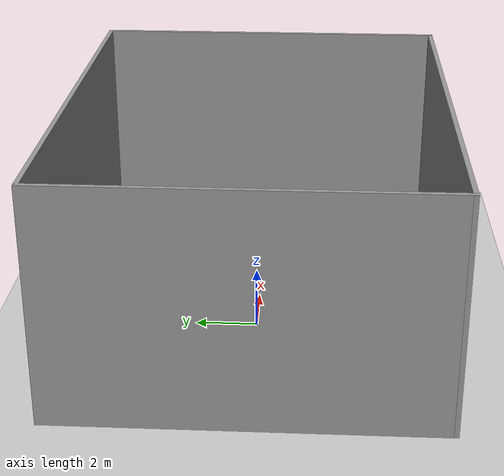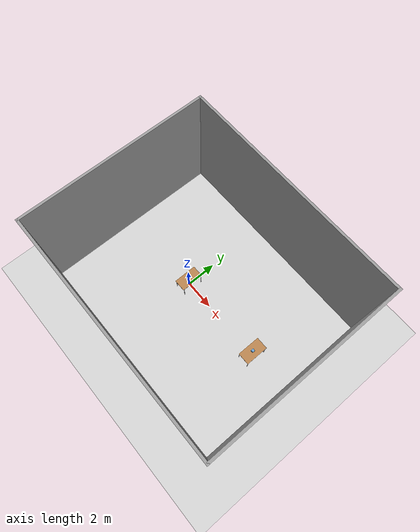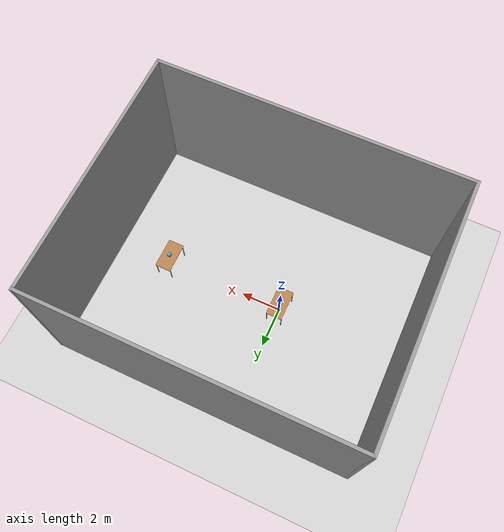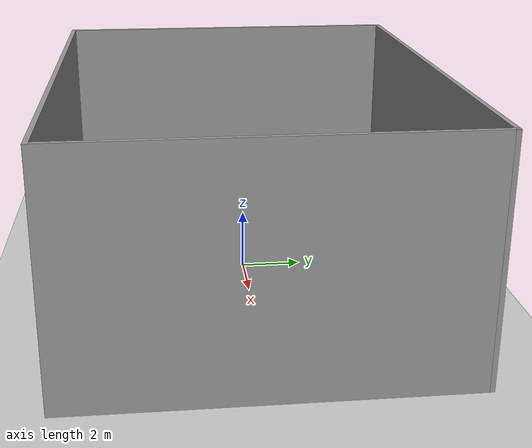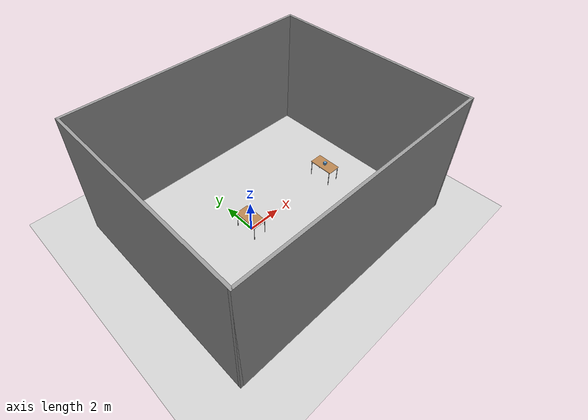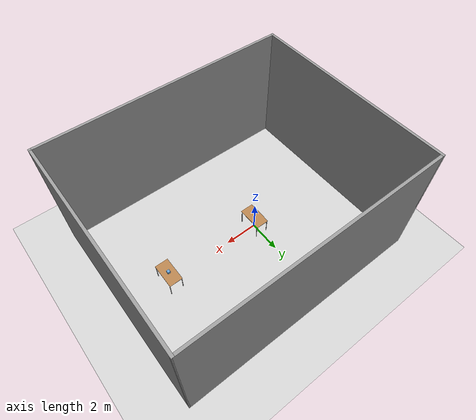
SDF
<sdf version="1.5">
 <world name="default">
  <light name="sun" type="directional">
   <pose>0 0 10 0 -0 0</pose>
   <diffuse>0.8 0.8 0.8 1</diffuse>
   <specular>0.2 0.2 0.2 1</specular>
   <attenuation>
    <range>1000</range>
    <constant>0.9</constant>
    <linear>0.01</linear>
    <quadratic>0.001</quadratic>
   </attenuation>
   <direction>-0.5 0.1 -0.9</direction>
   <spot><inner_angle>0</inner_angle><outer_angle>0</outer_angle><falloff>0</falloff></spot>
  </light>
  <model name="ground_plane">
   <static>1</static>
   <link name="link">
    <collision name="collision">
     <geometry><plane><normal>0 0 1</normal><size>100 100</size></plane></geometry>
     <surface>
      <contact><collide_bitmask>65535</collide_bitmask></contact>
      <friction><ode><mu>100</mu><mu2>50</mu2></ode></friction>
     </surface>
    </collision>
    <visual name="visual">
     <cast_shadows>0</cast_shadows>
     <geometry><plane><normal>0 0 1</normal><size>100 100</size></plane></geometry>
     <material>
      <script><uri>file://media/materials/scripts/gazebo.material</uri><name>Gazebo/Grey</name></script>
     </material>
    </visual>
   </link>
  </model>
  <gravity>0 0 -9.8</gravity>
  <magnetic_field>6e-06 2.3e-05 -4.2e-05</magnetic_field>
  <atmosphere type="adiabatic"/>
  <physics type="ode">
   <max_step_size>0.001</max_step_size>
   <real_time_factor>1</real_time_factor>
   <real_time_update_rate>1000</real_time_update_rate>
  </physics>
  <scene><ambient>0.4 0.4 0.4 1</ambient><background>0.7 0.7 0.7 1</background><shadows>1</shadows></scene>
  <spherical_coordinates>
   <surface_model>EARTH_WGS84</surface_model>
   <latitude_deg>0</latitude_deg>
   <longitude_deg>0</longitude_deg>
   <elevation>0</elevation>
   <heading_deg>0</heading_deg>
  </spherical_coordinates>
  <model name="Gym">
   <pose>1.425 0 0 0 -0 0</pose>
   <link name="Wall_16">
    <collision name="Wall_16_Collision">
     <geometry><box><size>12.15 0.15 7.5</size></box></geometry>
     <pose>0 0 3.75 0 -0 0</pose>
    </collision>
    <visual name="Wall_16_Visual">
     <pose>0 0 3.75 0 -0 0</pose>
     <geometry><box><size>12.15 0.15 7.5</size></box></geometry>
     <material>
      <script><uri>file://media/materials/scripts/gazebo.material</uri><name>Gazebo/Grey</name></script>
      <ambient>1 1 1 1</ambient>
     </material>
     <meta><layer>0</layer></meta>
    </visual>
    <pose>-7.425 0 0 0 -0 1.5708</pose>
   </link>
   <link name="Wall_18">
    <collision name="Wall_18_Collision">
     <geometry><box><size>15 0.15 7.5</size></box></geometry>
     <pose>0 0 3.75 0 -0 0</pose>
    </collision>
    <visual name="Wall_18_Visual">
     <pose>0 0 3.75 0 -0 0</pose>
     <geometry><box><size>15 0.15 7.5</size></box></geometry>
     <material>
      <script><uri>file://media/materials/scripts/gazebo.material</uri><name>Gazebo/Grey</name></script>
      <ambient>1 1 1 1</ambient>
     </material>
     <meta><layer>0</layer></meta>
    </visual>
    <pose>-0 -6 0 0 -0 0</pose>
   </link>
   <link name="Wall_20">
    <collision name="Wall_20_Collision">
     <geometry><box><size>12.15 0.15 7.5</size></box></geometry>
     <pose>0 0 3.75 0 -0 0</pose>
    </collision>
    <visual name="Wall_20_Visual">
     <pose>0 0 3.75 0 -0 0</pose>
     <geometry><box><size>12.15 0.15 7.5</size></box></geometry>
     <material>
      <script><uri>file://media/materials/scripts/gazebo.material</uri><name>Gazebo/Grey</name></script>
      <ambient>1 1 1 1</ambient>
     </material>
     <meta><layer>0</layer></meta>
    </visual>
    <pose>7.425 0 0 0 -0 1.5708</pose>
   </link>
   <link name="Wall_22">
    <collision name="Wall_22_Collision">
     <geometry><box><size>15 0.15 7.5</size></box></geometry>
     <pose>0 0 3.75 0 -0 0</pose>
    </collision>
    <visual name="Wall_22_Visual">
     <pose>0 0 3.75 0 -0 0</pose>
     <geometry><box><size>15 0.15 7.5</size></box></geometry>
     <material>
      <script><uri>file://media/materials/scripts/gazebo.material</uri><name>Gazebo/Grey</name></script>
      <ambient>1 1 1 1</ambient>
     </material>
     <meta><layer>0</layer></meta>
    </visual>
    <pose>-0 6 0 0 -0 0</pose>
   </link>
   <static>1</static>
  </model>
  <model name="payload">
   <link name="link">
    <inertial>
     <mass>0.6</mass>
     <inertia>
      <ixx>0.00261032</ixx>
      <ixy>0</ixy>
      <ixz>0</ixz>
      <iyy>0.00267918</iyy>
      <iyz>0</iyz>
      <izz>0.00262477</izz>
     </inertia>
    </inertial>
    <visual name="visual">
     <geometry><box><size>0.164123 0.164123 0.16324</size></box></geometry>
     <material>
      <script><name>Gazebo/Grey</name><uri>file://media/materials/scripts/gazebo.material</uri></script>
      <shader type="pixel"><normal_map>__default__</normal_map></shader>
      <ambient>0.4 0.624 0.824 0</ambient>
      <diffuse>0.4 0.624 0.824 0</diffuse>
      <specular>0.4 0.624 0.824 0</specular>
      <emissive>0 0 0 1</emissive>
     </material>
    </visual>
    <collision name="collision">
     <geometry><box><size>0.164123 0.159872 0.16324</size></box></geometry>
     <surface>
      <friction>
       <ode><mu>1</mu><mu2>1</mu2><fdir1>0 0 0</fdir1><slip1>0</slip1><slip2>0</slip2></ode>
       <torsional>
        <coefficient>1</coefficient>
        <patch_radius>0</patch_radius>
        <surface_radius>0</surface_radius>
        <use_patch_radius>1</use_patch_radius>
        <ode><slip>0</slip></ode>
       </torsional>
      </friction>
      <bounce><restitution_coefficient>0</restitution_coefficient><threshold>1e+06</threshold></bounce>
      <contact>
       <collide_without_contact>0</collide_without_contact>
       <collide_without_contact_bitmask>1</collide_without_contact_bitmask>
       <collide_bitmask>1</collide_bitmask>
       <ode>
        <soft_cfm>0</soft_cfm>
        <soft_erp>0.2</soft_erp>
        <kp>1e+13</kp>
        <kd>1</kd>
        <max_vel>0.01</max_vel>
        <min_depth>0</min_depth>
       </ode>
       <bullet>
        <split_impulse>1</split_impulse>
        <split_impulse_penetration_threshold>-0.01</split_impulse_penetration_threshold>
        <soft_cfm>0</soft_cfm>
        <soft_erp>0.2</soft_erp>
        <kp>1e+13</kp>
        <kd>1</kd>
       </bullet>
      </contact>
     </surface>
    </collision>
   </link>
   <static>0</static>
   <pose>6 0 1.09687 0 -0 0</pose>
  </model>
  <model name="table">
   <static>1</static>
   <link name="link">
    <collision name="surface">
     <pose>0 0 1 0 -0 0</pose>
     <geometry><box><size>1.5 0.8 0.03</size></box></geometry>
     <surface><friction><ode><mu>0.6</mu><mu2>0.6</mu2></ode></friction></surface>
    </collision>
    <visual name="visual1">
     <pose>0 0 1 0 -0 0</pose>
     <geometry><box><size>1.5 0.8 0.03</size></box></geometry>
     <material>
      <script><uri>file://media/materials/scripts/gazebo.material</uri><name>Gazebo/Wood</name></script>
     </material>
    </visual>
    <collision name="front_left_leg">
     <pose>0.68 0.38 0.5 0 -0 0</pose>
     <geometry><cylinder><radius>0.02</radius><length>1</length></cylinder></geometry>
    </collision>
    <visual name="front_left_leg">
     <pose>0.68 0.38 0.5 0 -0 0</pose>
     <geometry><cylinder><radius>0.02</radius><length>1</length></cylinder></geometry>
     <material>
      <script><uri>file://media/materials/scripts/gazebo.material</uri><name>Gazebo/Grey</name></script>
     </material>
    </visual>
    <collision name="front_right_leg">
     <pose>0.68 -0.38 0.5 0 -0 0</pose>
     <geometry><cylinder><radius>0.02</radius><length>1</length></cylinder></geometry>
    </collision>
    <visual name="front_right_leg">
     <pose>0.68 -0.38 0.5 0 -0 0</pose>
     <geometry><cylinder><radius>0.02</radius><length>1</length></cylinder></geometry>
     <material>
      <script><uri>file://media/materials/scripts/gazebo.material</uri><name>Gazebo/Grey</name></script>
     </material>
    </visual>
    <collision name="back_right_leg">
     <pose>-0.68 -0.38 0.5 0 -0 0</pose>
     <geometry><cylinder><radius>0.02</radius><length>1</length></cylinder></geometry>
    </collision>
    <visual name="back_right_leg">
     <pose>-0.68 -0.38 0.5 0 -0 0</pose>
     <geometry><cylinder><radius>0.02</radius><length>1</length></cylinder></geometry>
     <material>
      <script><uri>file://media/materials/scripts/gazebo.material</uri><name>Gazebo/Grey</name></script>
     </material>
    </visual>
    <collision name="back_left_leg">
     <pose>-0.68 0.38 0.5 0 -0 0</pose>
     <geometry><cylinder><radius>0.02</radius><length>1</length></cylinder></geometry>
    </collision>
    <visual name="back_left_leg">
     <pose>-0.68 0.38 0.5 0 -0 0</pose>
     <geometry><cylinder><radius>0.02</radius><length>1</length></cylinder></geometry>
     <material>
      <script><uri>file://media/materials/scripts/gazebo.material</uri><name>Gazebo/Grey</name></script>
     </material>
    </visual>
   </link>
   <pose>0 0 0 0 -0 1.57</pose>
  </model>
  <model name="table_clone">
   <static>1</static>
   <link name="link">
    <collision name="surface">
     <pose>0 0 1 0 -0 0</pose>
     <geometry><box><size>1.5 0.8 0.03</size></box></geometry>
     <surface><friction><ode><mu>0.6</mu><mu2>0.6</mu2></ode></friction></surface>
    </collision>
    <visual name="visual1">
     <pose>0 0 1 0 -0 0</pose>
     <geometry><box><size>1.5 0.8 0.03</size></box></geometry>
     <material>
      <script><uri>file://media/materials/scripts/gazebo.material</uri><name>Gazebo/Wood</name></script>
     </material>
    </visual>
    <collision name="front_left_leg">
     <pose>0.68 0.38 0.5 0 -0 0</pose>
     <geometry><cylinder><radius>0.02</radius><length>1</length></cylinder></geometry>
    </collision>
    <visual name="front_left_leg">
     <pose>0.68 0.38 0.5 0 -0 0</pose>
     <geometry><cylinder><radius>0.02</radius><length>1</length></cylinder></geometry>
     <material>
      <script><uri>file://media/materials/scripts/gazebo.material</uri><name>Gazebo/Grey</name></script>
     </material>
    </visual>
    <collision name="front_right_leg">
     <pose>0.68 -0.38 0.5 0 -0 0</pose>
     <geometry><cylinder><radius>0.02</radius><length>1</length></cylinder></geometry>
    </collision>
    <visual name="front_right_leg">
     <pose>0.68 -0.38 0.5 0 -0 0</pose>
     <geometry><cylinder><radius>0.02</radius><length>1</length></cylinder></geometry>
     <material>
      <script><uri>file://media/materials/scripts/gazebo.material</uri><name>Gazebo/Grey</name></script>
     </material>
    </visual>
    <collision name="back_right_leg">
     <pose>-0.68 -0.38 0.5 0 -0 0</pose>
     <geometry><cylinder><radius>0.02</radius><length>1</length></cylinder></geometry>
    </collision>
    <visual name="back_right_leg">
     <pose>-0.68 -0.38 0.5 0 -0 0</pose>
     <geometry><cylinder><radius>0.02</radius><length>1</length></cylinder></geometry>
     <material>
      <script><uri>file://media/materials/scripts/gazebo.material</uri><name>Gazebo/Grey</name></script>
     </material>
    </visual>
    <collision name="back_left_leg">
     <pose>-0.68 0.38 0.5 0 -0 0</pose>
     <geometry><cylinder><radius>0.02</radius><length>1</length></cylinder></geometry>
    </collision>
    <visual name="back_left_leg">
     <pose>-0.68 0.38 0.5 0 -0 0</pose>
     <geometry><cylinder><radius>0.02</radius><length>1</length></cylinder></geometry>
     <material>
      <script><uri>file://media/materials/scripts/gazebo.material</uri><name>Gazebo/Grey</name></script>
     </material>
    </visual>
   </link>
   <pose>6 0 0 0 -0 1.57</pose>
  </model>
 </world>
</sdf>
